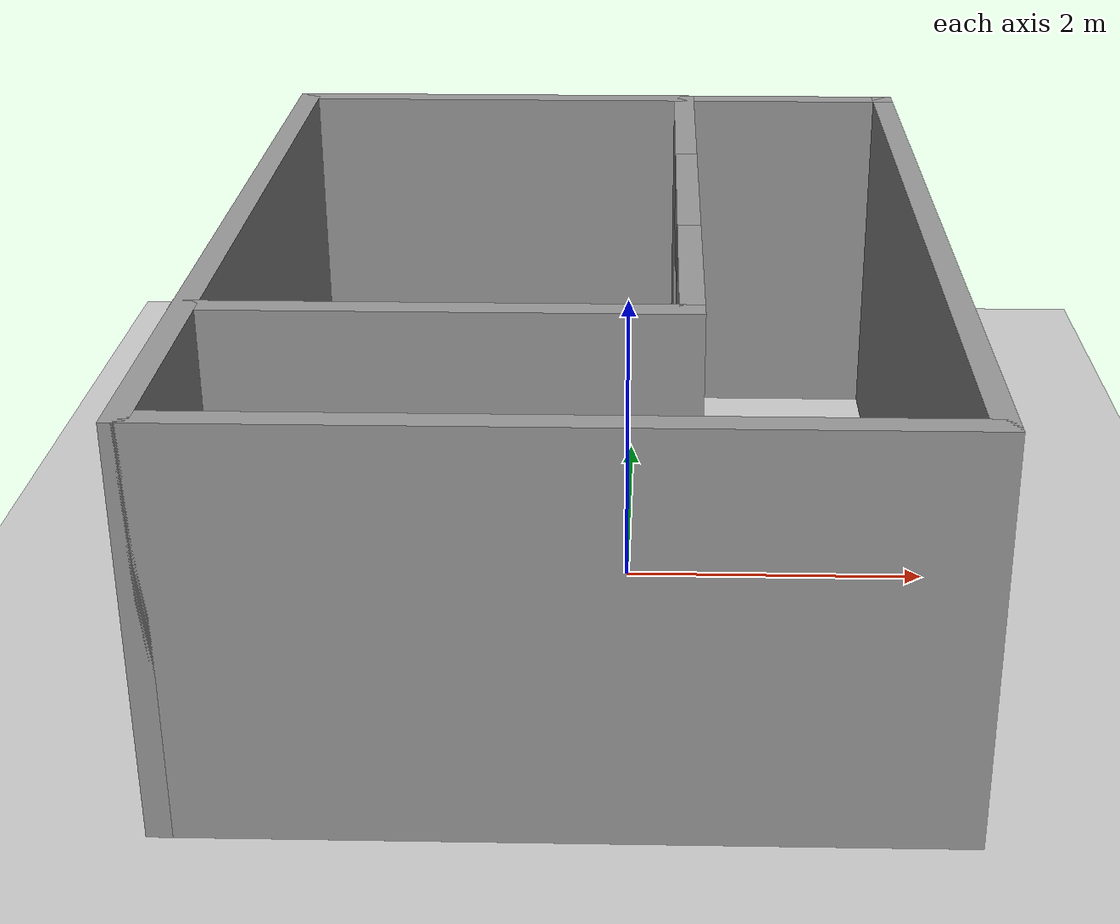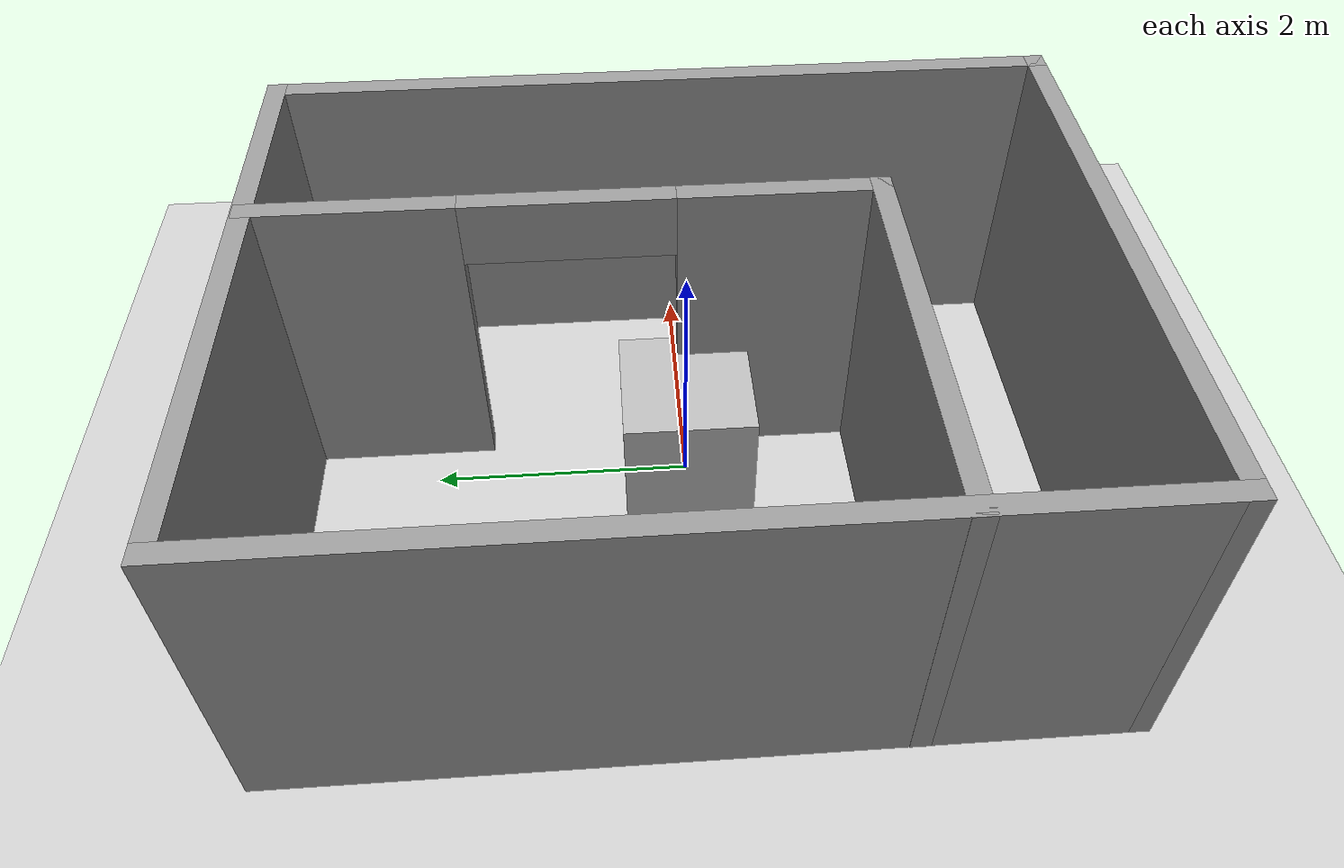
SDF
<?xml version="1.0"?>
<sdf version="1.4">
  <world name="default">

    <!-- Ground Plane -->
    <include>
      <uri>model://ground_plane</uri>
    </include>

    <include>
      <uri>model://sun</uri>
    </include>

    <model name="box">
      <pose>0 0 0.5 0 0 0</pose>
      <link name="link">
        <collision name="collision">
          <geometry>
            <box>
              <size>1 1 1</size>
            </box>
          </geometry>
        </collision>

        <visual name="visual">
          <geometry>
            <box>
              <size>1 1 1</size>
            </box>
          </geometry>
        </visual>
      </link>

      <plugin name="model_push" filename="libmodel_push.so"/>
    </model>

    <model name='room'>
      <pose frame=''>-0.307287 0.057266 0 0 -0 0</pose>
      <link name='Wall_0'>
        <collision name='Wall_0_Collision'>
          <geometry>
            <box>
              <size>4.572 0.15 2.5</size>
            </box>
          </geometry>
          <pose frame=''>0 0 1.25 0 -0 0</pose>
          <max_contacts>10</max_contacts>
          <surface>
            <contact>
              <ode/>
            </contact>
            <bounce/>
            <friction>
              <torsional>
                <ode/>
              </torsional>
              <ode/>
            </friction>
          </surface>
        </collision>
        <visual name='Wall_0_Visual'>
          <pose frame=''>0 0 1.25 0 -0 0</pose>
          <geometry>
            <box>
              <size>4.572 0.15 2.5</size>
            </box>
          </geometry>
          <material>
            <script>
              <uri>file://media/materials/scripts/gazebo.material</uri>
              <name>Gazebo/Grey</name>
            </script>
            <ambient>1 1 1 1</ambient>
          </material>
        </visual>
        <pose frame=''>0.00115 -2.973 0 0 -0 0</pose>
        <self_collide>0</self_collide>
        <kinematic>0</kinematic>
        <gravity>1</gravity>
      </link>
      <link name='Wall_10'>
        <pose frame=''>0.68585 0.754075 0 0 -0 1.5708</pose>
        <visual name='Wall_10_Visual_0'>
          <pose frame=''>-1.52521 0 1.25 0 -0 0</pose>
          <geometry>
            <box>
              <size>1.52157 0.15 2.5</size>
            </box>
          </geometry>
          <material>
            <script>
              <uri>file://media/materials/scripts/gazebo.material</uri>
              <name>Gazebo/Grey</name>
            </script>
            <ambient>1 1 1 1</ambient>
          </material>
        </visual>
        <collision name='Wall_10_Collision_0'>
          <geometry>
            <box>
              <size>1.52157 0.15 2.5</size>
            </box>
          </geometry>
          <pose frame=''>-1.52521 0 1.25 0 -0 0</pose>
          <max_contacts>10</max_contacts>
          <surface>
            <contact>
              <ode/>
            </contact>
            <bounce/>
            <friction>
              <torsional>
                <ode/>
              </torsional>
              <ode/>
            </friction>
          </surface>
        </collision>
        <visual name='Wall_10_Visual_1'>
          <pose frame=''>1.52279 0 1.25 0 -0 0</pose>
          <geometry>
            <box>
              <size>1.52642 0.15 2.5</size>
            </box>
          </geometry>
          <material>
            <script>
              <uri>file://media/materials/scripts/gazebo.material</uri>
              <name>Gazebo/Grey</name>
            </script>
            <ambient>1 1 1 1</ambient>
          </material>
        </visual>
        <collision name='Wall_10_Collision_1'>
          <geometry>
            <box>
              <size>1.52642 0.15 2.5</size>
            </box>
          </geometry>
          <pose frame=''>1.52279 0 1.25 0 -0 0</pose>
          <max_contacts>10</max_contacts>
          <surface>
            <contact>
              <ode/>
            </contact>
            <bounce/>
            <friction>
              <torsional>
                <ode/>
              </torsional>
              <ode/>
            </friction>
          </surface>
        </collision>
        <visual name='Wall_10_Visual_2'>
          <pose frame=''>-0.002425 0 2.25 0 -0 0</pose>
          <geometry>
            <box>
              <size>1.524 0.15 0.5</size>
            </box>
          </geometry>
          <material>
            <script>
              <uri>file://media/materials/scripts/gazebo.material</uri>
              <name>Gazebo/Grey</name>
            </script>
            <ambient>1 1 1 1</ambient>
          </material>
        </visual>
        <collision name='Wall_10_Collision_2'>
          <geometry>
            <box>
              <size>1.524 0.15 0.5</size>
            </box>
          </geometry>
          <pose frame=''>-0.002425 0 2.25 0 -0 0</pose>
          <max_contacts>10</max_contacts>
          <surface>
            <contact>
              <ode/>
            </contact>
            <bounce/>
            <friction>
              <torsional>
                <ode/>
              </torsional>
              <ode/>
            </friction>
          </surface>
        </collision>
        <self_collide>0</self_collide>
        <kinematic>0</kinematic>
        <gravity>1</gravity>
      </link>
      <link name='Wall_2'>
        <collision name='Wall_2_Collision'>
          <geometry>
            <box>
              <size>6.096 0.15 2.5</size>
            </box>
          </geometry>
          <pose frame=''>0 0 1.25 0 -0 0</pose>
          <max_contacts>10</max_contacts>
          <surface>
            <contact>
              <ode/>
            </contact>
            <bounce/>
            <friction>
              <torsional>
                <ode/>
              </torsional>
              <ode/>
            </friction>
          </surface>
        </collision>
        <visual name='Wall_2_Visual'>
          <pose frame=''>0 0 1.25 0 -0 0</pose>
          <geometry>
            <box>
              <size>6.096 0.15 2.5</size>
            </box>
          </geometry>
          <material>
            <script>
              <uri>file://media/materials/scripts/gazebo.material</uri>
              <name>Gazebo/Grey</name>
            </script>
            <ambient>1 1 1 1</ambient>
          </material>
        </visual>
        <pose frame=''>-2.20985 0 0 0 -0 1.5708</pose>
        <self_collide>0</self_collide>
        <kinematic>0</kinematic>
        <gravity>1</gravity>
      </link>
      <link name='Wall_4'>
        <collision name='Wall_4_Collision'>
          <geometry>
            <box>
              <size>6.096 0.15 2.5</size>
            </box>
          </geometry>
          <pose frame=''>0 0 1.25 0 -0 0</pose>
          <max_contacts>10</max_contacts>
          <surface>
            <contact>
              <ode/>
            </contact>
            <bounce/>
            <friction>
              <torsional>
                <ode/>
              </torsional>
              <ode/>
            </friction>
          </surface>
        </collision>
        <visual name='Wall_4_Visual'>
          <pose frame=''>0 0 1.25 0 -0 0</pose>
          <geometry>
            <box>
              <size>6.096 0.15 2.5</size>
            </box>
          </geometry>
          <material>
            <script>
              <uri>file://media/materials/scripts/gazebo.material</uri>
              <name>Gazebo/Grey</name>
            </script>
            <ambient>1 1 1 1</ambient>
          </material>
        </visual>
        <pose frame=''>2.21215 0 0 0 -0 1.5708</pose>
        <self_collide>0</self_collide>
        <kinematic>0</kinematic>
        <gravity>1</gravity>
      </link>
      <link name='Wall_6'>
        <collision name='Wall_6_Collision'>
          <geometry>
            <box>
              <size>4.572 0.15 2.5</size>
            </box>
          </geometry>
          <pose frame=''>0 0 1.25 0 -0 0</pose>
          <max_contacts>10</max_contacts>
          <surface>
            <contact>
              <ode/>
            </contact>
            <bounce/>
            <friction>
              <torsional>
                <ode/>
              </torsional>
              <ode/>
            </friction>
          </surface>
        </collision>
        <visual name='Wall_6_Visual'>
          <pose frame=''>0 0 1.25 0 -0 0</pose>
          <geometry>
            <box>
              <size>4.572 0.15 2.5</size>
            </box>
          </geometry>
          <material>
            <script>
              <uri>file://media/materials/scripts/gazebo.material</uri>
              <name>Gazebo/Grey</name>
            </script>
            <ambient>1 1 1 1</ambient>
          </material>
        </visual>
        <pose frame=''>0.00115 2.973 0 0 -0 3.14159</pose>
        <self_collide>0</self_collide>
        <kinematic>0</kinematic>
        <gravity>1</gravity>
      </link>
      <link name='Wall_8'>
        <collision name='Wall_8_Collision'>
          <geometry>
            <box>
              <size>3.048 0.15 2.5</size>
            </box>
          </geometry>
          <pose frame=''>0 0 1.25 0 -0 0</pose>
          <max_contacts>10</max_contacts>
          <surface>
            <contact>
              <ode/>
            </contact>
            <bounce/>
            <friction>
              <torsional>
                <ode/>
              </torsional>
              <ode/>
            </friction>
          </surface>
        </collision>
        <visual name='Wall_8_Visual'>
          <pose frame=''>0 0 1.25 0 -0 0</pose>
          <geometry>
            <box>
              <size>3.048 0.15 2.5</size>
            </box>
          </geometry>
          <material>
            <script>
              <uri>file://media/materials/scripts/gazebo.material</uri>
              <name>Gazebo/Grey</name>
            </script>
            <ambient>1 1 1 1</ambient>
          </material>
        </visual>
        <pose frame=''>-0.76315 -1.45693 0 0 -0 0</pose>
        <self_collide>0</self_collide>
        <kinematic>0</kinematic>
        <gravity>1</gravity>
      </link>
      <static>1</static>
    </model>
  </world>
</sdf>
